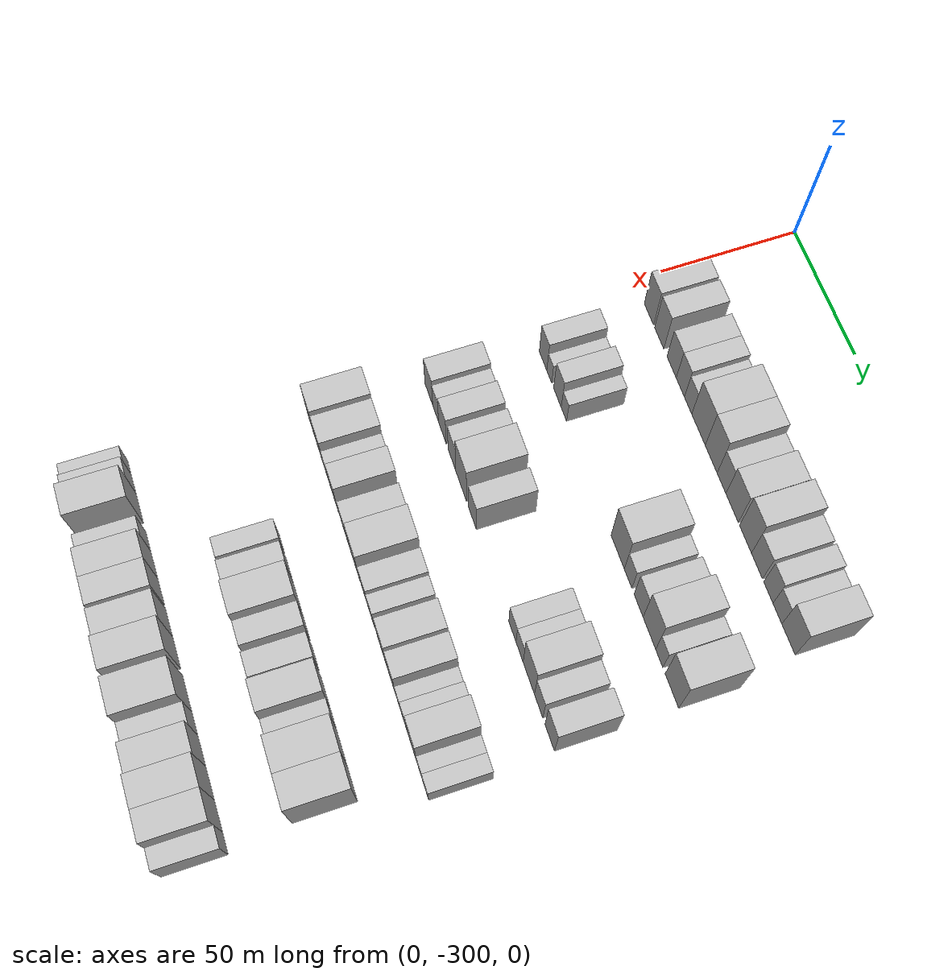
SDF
<sdf version="1.6">
 <world name="default">
  <model name="building_40">
   <static>1</static>
   <pose>50.0000 -285.7886 0 0.000000 0.000000 0.000000</pose>
   <link name="link">
    <pose>0 0 10.50 0 0 0</pose>
    <collision name="collision"><geometry><box><size>20.0000 8.7397 21.0000</size></box></geometry></collision>
    <visual name="visual">
     <cast_shadows>0</cast_shadows>
     <geometry><box><size>20.0000 8.7397 21.0000</size></box></geometry>
     <material>
      <script>
       <uri>model://HANNAS_wall/materials/scripts</uri>
       <uri>model://HANNAS_wall/materials/textures</uri>
       <name>vrc/HANNAS_wall</name>
      </script>
     </material>
    </visual>
   </link>
  </model>
  <model name="building_41">
   <static>1</static>
   <pose>50.0000 -276.1720 0 0.000000 0.000000 0.000000</pose>
   <link name="link">
    <pose>0 0 10.50 0 0 0</pose>
    <collision name="collision"><geometry><box><size>20.0000 8.4935 21.0000</size></box></geometry></collision>
    <visual name="visual">
     <cast_shadows>0</cast_shadows>
     <geometry><box><size>20.0000 8.4935 21.0000</size></box></geometry>
     <material>
      <script>
       <uri>model://HANNAS_wall/materials/scripts</uri>
       <uri>model://HANNAS_wall/materials/textures</uri>
       <name>vrc/HANNAS_wall</name>
      </script>
     </material>
    </visual>
   </link>
  </model>
  <model name="building_42">
   <static>1</static>
   <pose>50.0000 -264.7379 0 0.000000 0.000000 0.000000</pose>
   <link name="link">
    <pose>0 0 9.00 0 0 0</pose>
    <collision name="collision"><geometry><box><size>20.0000 8.3747 18.0000</size></box></geometry></collision>
    <visual name="visual">
     <cast_shadows>0</cast_shadows>
     <geometry><box><size>20.0000 8.3747 18.0000</size></box></geometry>
     <material>
      <script>
       <uri>model://HANNAS_wall/materials/scripts</uri>
       <uri>model://HANNAS_wall/materials/textures</uri>
       <name>vrc/HANNAS_wall</name>
      </script>
     </material>
    </visual>
   </link>
  </model>
  <model name="building_43">
   <static>1</static>
   <pose>50.0000 -256.8745 0 0.000000 0.000000 0.000000</pose>
   <link name="link">
    <pose>0 0 9.00 0 0 0</pose>
    <collision name="collision"><geometry><box><size>20.0000 7.3521 18.0000</size></box></geometry></collision>
    <visual name="visual">
     <cast_shadows>0</cast_shadows>
     <geometry><box><size>20.0000 7.3521 18.0000</size></box></geometry>
     <material>
      <script>
       <uri>model://HANNAS_wall/materials/scripts</uri>
       <uri>model://HANNAS_wall/materials/textures</uri>
       <name>vrc/HANNAS_wall</name>
      </script>
     </material>
    </visual>
   </link>
  </model>
  <model name="building_44">
   <static>1</static>
   <pose>50.0000 -249.8854 0 0.000000 0.000000 0.000000</pose>
   <link name="link">
    <pose>0 0 7.50 0 0 0</pose>
    <collision name="collision"><geometry><box><size>20.0000 6.6262 15.0000</size></box></geometry></collision>
    <visual name="visual">
     <cast_shadows>0</cast_shadows>
     <geometry><box><size>20.0000 6.6262 15.0000</size></box></geometry>
     <material>
      <script>
       <uri>model://HANNAS_wall/materials/scripts</uri>
       <uri>model://HANNAS_wall/materials/textures</uri>
       <name>vrc/HANNAS_wall</name>
      </script>
     </material>
    </visual>
   </link>
  </model>
  <model name="building_45">
   <static>1</static>
   <pose>50.0000 -240.6551 0 0.000000 0.000000 0.000000</pose>
   <link name="link">
    <pose>0 0 12.00 0 0 0</pose>
    <collision name="collision"><geometry><box><size>20.0000 11.8344 24.0000</size></box></geometry></collision>
    <visual name="visual">
     <cast_shadows>0</cast_shadows>
     <geometry><box><size>20.0000 11.8344 24.0000</size></box></geometry>
     <material>
      <script>
       <uri>model://HANNAS_wall/materials/scripts</uri>
       <uri>model://HANNAS_wall/materials/textures</uri>
       <name>vrc/HANNAS_wall</name>
      </script>
     </material>
    </visual>
   </link>
  </model>
  <model name="building_46">
   <static>1</static>
   <pose>50.0000 -229.5903 0 0.000000 0.000000 0.000000</pose>
   <link name="link">
    <pose>0 0 12.00 0 0 0</pose>
    <collision name="collision"><geometry><box><size>20.0000 10.2952 24.0000</size></box></geometry></collision>
    <visual name="visual">
     <cast_shadows>0</cast_shadows>
     <geometry><box><size>20.0000 10.2952 24.0000</size></box></geometry>
     <material>
      <script>
       <uri>model://HANNAS_wall/materials/scripts</uri>
       <uri>model://HANNAS_wall/materials/textures</uri>
       <name>vrc/HANNAS_wall</name>
      </script>
     </material>
    </visual>
   </link>
  </model>
  <model name="building_47">
   <static>1</static>
   <pose>50.0000 -220.6747 0 0.000000 0.000000 0.000000</pose>
   <link name="link">
    <pose>0 0 9.00 0 0 0</pose>
    <collision name="collision"><geometry><box><size>20.0000 7.5360 18.0000</size></box></geometry></collision>
    <visual name="visual">
     <cast_shadows>0</cast_shadows>
     <geometry><box><size>20.0000 7.5360 18.0000</size></box></geometry>
     <material>
      <script>
       <uri>model://HANNAS_wall/materials/scripts</uri>
       <uri>model://HANNAS_wall/materials/textures</uri>
       <name>vrc/HANNAS_wall</name>
      </script>
     </material>
    </visual>
   </link>
  </model>
  <model name="building_48">
   <static>1</static>
   <pose>50.0000 -211.6973 0 0.000000 0.000000 0.000000</pose>
   <link name="link">
    <pose>0 0 10.50 0 0 0</pose>
    <collision name="collision"><geometry><box><size>20.0000 10.4188 21.0000</size></box></geometry></collision>
    <visual name="visual">
     <cast_shadows>0</cast_shadows>
     <geometry><box><size>20.0000 10.4188 21.0000</size></box></geometry>
     <material>
      <script>
       <uri>model://HANNAS_wall/materials/scripts</uri>
       <uri>model://HANNAS_wall/materials/textures</uri>
       <name>vrc/HANNAS_wall</name>
      </script>
     </material>
    </visual>
   </link>
  </model>
  <model name="building_49">
   <static>1</static>
   <pose>50.0000 -200.5732 0 0.000000 0.000000 0.000000</pose>
   <link name="link">
    <pose>0 0 12.00 0 0 0</pose>
    <collision name="collision"><geometry><box><size>20.0000 9.8295 24.0000</size></box></geometry></collision>
    <visual name="visual">
     <cast_shadows>0</cast_shadows>
     <geometry><box><size>20.0000 9.8295 24.0000</size></box></geometry>
     <material>
      <script>
       <uri>model://HANNAS_wall/materials/scripts</uri>
       <uri>model://HANNAS_wall/materials/textures</uri>
       <name>vrc/HANNAS_wall</name>
      </script>
     </material>
    </visual>
   </link>
  </model>
  <model name="building_50">
   <static>1</static>
   <pose>50.0000 -191.1730 0 0.000000 0.000000 0.000000</pose>
   <link name="link">
    <pose>0 0 9.00 0 0 0</pose>
    <collision name="collision"><geometry><box><size>20.0000 8.9709 18.0000</size></box></geometry></collision>
    <visual name="visual">
     <cast_shadows>0</cast_shadows>
     <geometry><box><size>20.0000 8.9709 18.0000</size></box></geometry>
     <material>
      <script>
       <uri>model://HANNAS_wall/materials/scripts</uri>
       <uri>model://HANNAS_wall/materials/textures</uri>
       <name>vrc/HANNAS_wall</name>
      </script>
     </material>
    </visual>
   </link>
  </model>
  <model name="building_51">
   <static>1</static>
   <pose>50.0000 -181.9893 0 0.000000 0.000000 0.000000</pose>
   <link name="link">
    <pose>0 0 9.00 0 0 0</pose>
    <collision name="collision"><geometry><box><size>20.0000 7.3965 18.0000</size></box></geometry></collision>
    <visual name="visual">
     <cast_shadows>0</cast_shadows>
     <geometry><box><size>20.0000 7.3965 18.0000</size></box></geometry>
     <material>
      <script>
       <uri>model://HANNAS_wall/materials/scripts</uri>
       <uri>model://HANNAS_wall/materials/textures</uri>
       <name>vrc/HANNAS_wall</name>
      </script>
     </material>
    </visual>
   </link>
  </model>
  <model name="building_52">
   <static>1</static>
   <pose>50.0000 -174.7818 0 0.000000 0.000000 0.000000</pose>
   <link name="link">
    <pose>0 0 7.50 0 0 0</pose>
    <collision name="collision"><geometry><box><size>20.0000 7.0185 15.0000</size></box></geometry></collision>
    <visual name="visual">
     <cast_shadows>0</cast_shadows>
     <geometry><box><size>20.0000 7.0185 15.0000</size></box></geometry>
     <material>
      <script>
       <uri>model://HANNAS_wall/materials/scripts</uri>
       <uri>model://HANNAS_wall/materials/textures</uri>
       <name>vrc/HANNAS_wall</name>
      </script>
     </material>
    </visual>
   </link>
  </model>
  <model name="building_53">
   <static>1</static>
   <pose>50.0000 -166.0844 0 0.000000 0.000000 0.000000</pose>
   <link name="link">
    <pose>0 0 10.50 0 0 0</pose>
    <collision name="collision"><geometry><box><size>20.0000 10.3764 21.0000</size></box></geometry></collision>
    <visual name="visual">
     <cast_shadows>0</cast_shadows>
     <geometry><box><size>20.0000 10.3764 21.0000</size></box></geometry>
     <material>
      <script>
       <uri>model://HANNAS_wall/materials/scripts</uri>
       <uri>model://HANNAS_wall/materials/textures</uri>
       <name>vrc/HANNAS_wall</name>
      </script>
     </material>
    </visual>
   </link>
  </model>
  <model name="building_174">
   <static>1</static>
   <pose>90.0000 -280.3280 0 0.000000 0.000000 0.000000</pose>
   <link name="link">
    <pose>0 0 9.00 0 0 0</pose>
    <collision name="collision"><geometry><box><size>20.0000 7.4858 18.0000</size></box></geometry></collision>
    <visual name="visual">
     <cast_shadows>0</cast_shadows>
     <geometry><box><size>20.0000 7.4858 18.0000</size></box></geometry>
     <material>
      <script>
       <uri>model://HANNAS_wall/materials/scripts</uri>
       <uri>model://HANNAS_wall/materials/textures</uri>
       <name>vrc/HANNAS_wall</name>
      </script>
     </material>
    </visual>
   </link>
  </model>
  <model name="building_175">
   <static>1</static>
   <pose>90.0000 -274.1637 0 0.000000 0.000000 0.000000</pose>
   <link name="link">
    <pose>0 0 6.00 0 0 0</pose>
    <collision name="collision"><geometry><box><size>20.0000 4.8428 12.0000</size></box></geometry></collision>
    <visual name="visual">
     <cast_shadows>0</cast_shadows>
     <geometry><box><size>20.0000 4.8428 12.0000</size></box></geometry>
     <material>
      <script>
       <uri>model://HANNAS_wall/materials/scripts</uri>
       <uri>model://HANNAS_wall/materials/textures</uri>
       <name>vrc/HANNAS_wall</name>
      </script>
     </material>
    </visual>
   </link>
  </model>
  <model name="building_176">
   <static>1</static>
   <pose>90.0000 -266.0257 0 0.000000 0.000000 0.000000</pose>
   <link name="link">
    <pose>0 0 9.00 0 0 0</pose>
    <collision name="collision"><geometry><box><size>20.0000 7.4333 18.0000</size></box></geometry></collision>
    <visual name="visual">
     <cast_shadows>0</cast_shadows>
     <geometry><box><size>20.0000 7.4333 18.0000</size></box></geometry>
     <material>
      <script>
       <uri>model://HANNAS_wall/materials/scripts</uri>
       <uri>model://HANNAS_wall/materials/textures</uri>
       <name>vrc/HANNAS_wall</name>
      </script>
     </material>
    </visual>
   </link>
  </model>
  <model name="building_177">
   <static>1</static>
   <pose>90.0000 -259.6728 0 0.000000 0.000000 0.000000</pose>
   <link name="link">
    <pose>0 0 6.00 0 0 0</pose>
    <collision name="collision"><geometry><box><size>20.0000 5.2724 12.0000</size></box></geometry></collision>
    <visual name="visual">
     <cast_shadows>0</cast_shadows>
     <geometry><box><size>20.0000 5.2724 12.0000</size></box></geometry>
     <material>
      <script>
       <uri>model://HANNAS_wall/materials/scripts</uri>
       <uri>model://HANNAS_wall/materials/textures</uri>
       <name>vrc/HANNAS_wall</name>
      </script>
     </material>
    </visual>
   </link>
  </model>
  <model name="building_178">
   <static>1</static>
   <pose>90.0000 -209.2041 0 0.000000 0.000000 0.000000</pose>
   <link name="link">
    <pose>0 0 12.00 0 0 0</pose>
    <collision name="collision"><geometry><box><size>20.0000 11.8884 24.0000</size></box></geometry></collision>
    <visual name="visual">
     <cast_shadows>0</cast_shadows>
     <geometry><box><size>20.0000 11.8884 24.0000</size></box></geometry>
     <material>
      <script>
       <uri>model://HANNAS_wall/materials/scripts</uri>
       <uri>model://HANNAS_wall/materials/textures</uri>
       <name>vrc/HANNAS_wall</name>
      </script>
     </material>
    </visual>
   </link>
  </model>
  <model name="building_179">
   <static>1</static>
   <pose>90.0000 -199.9411 0 0.000000 0.000000 0.000000</pose>
   <link name="link">
    <pose>0 0 7.50 0 0 0</pose>
    <collision name="collision"><geometry><box><size>20.0000 6.6376 15.0000</size></box></geometry></collision>
    <visual name="visual">
     <cast_shadows>0</cast_shadows>
     <geometry><box><size>20.0000 6.6376 15.0000</size></box></geometry>
     <material>
      <script>
       <uri>model://HANNAS_wall/materials/scripts</uri>
       <uri>model://HANNAS_wall/materials/textures</uri>
       <name>vrc/HANNAS_wall</name>
      </script>
     </material>
    </visual>
   </link>
  </model>
  <model name="building_180">
   <static>1</static>
   <pose>90.0000 -190.6815 0 0.000000 0.000000 0.000000</pose>
   <link name="link">
    <pose>0 0 9.00 0 0 0</pose>
    <collision name="collision"><geometry><box><size>20.0000 7.8816 18.0000</size></box></geometry></collision>
    <visual name="visual">
     <cast_shadows>0</cast_shadows>
     <geometry><box><size>20.0000 7.8816 18.0000</size></box></geometry>
     <material>
      <script>
       <uri>model://HANNAS_wall/materials/scripts</uri>
       <uri>model://HANNAS_wall/materials/textures</uri>
       <name>vrc/HANNAS_wall</name>
      </script>
     </material>
    </visual>
   </link>
  </model>
  <model name="building_181">
   <static>1</static>
   <pose>90.0000 -181.3349 0 0.000000 0.000000 0.000000</pose>
   <link name="link">
    <pose>0 0 12.00 0 0 0</pose>
    <collision name="collision"><geometry><box><size>20.0000 10.8117 24.0000</size></box></geometry></collision>
    <visual name="visual">
     <cast_shadows>0</cast_shadows>
     <geometry><box><size>20.0000 10.8117 24.0000</size></box></geometry>
     <material>
      <script>
       <uri>model://HANNAS_wall/materials/scripts</uri>
       <uri>model://HANNAS_wall/materials/textures</uri>
       <name>vrc/HANNAS_wall</name>
      </script>
     </material>
    </visual>
   </link>
  </model>
  <model name="building_182">
   <static>1</static>
   <pose>90.0000 -172.9248 0 0.000000 0.000000 0.000000</pose>
   <link name="link">
    <pose>0 0 7.50 0 0 0</pose>
    <collision name="collision"><geometry><box><size>20.0000 6.0084 15.0000</size></box></geometry></collision>
    <visual name="visual">
     <cast_shadows>0</cast_shadows>
     <geometry><box><size>20.0000 6.0084 15.0000</size></box></geometry>
     <material>
      <script>
       <uri>model://HANNAS_wall/materials/scripts</uri>
       <uri>model://HANNAS_wall/materials/textures</uri>
       <name>vrc/HANNAS_wall</name>
      </script>
     </material>
    </visual>
   </link>
  </model>
  <model name="building_183">
   <static>1</static>
   <pose>90.0000 -162.3015 0 0.000000 0.000000 0.000000</pose>
   <link name="link">
    <pose>0 0 12.00 0 0 0</pose>
    <collision name="collision"><geometry><box><size>20.0000 11.2383 24.0000</size></box></geometry></collision>
    <visual name="visual">
     <cast_shadows>0</cast_shadows>
     <geometry><box><size>20.0000 11.2383 24.0000</size></box></geometry>
     <material>
      <script>
       <uri>model://HANNAS_wall/materials/scripts</uri>
       <uri>model://HANNAS_wall/materials/textures</uri>
       <name>vrc/HANNAS_wall</name>
      </script>
     </material>
    </visual>
   </link>
  </model>
  <model name="building_316">
   <static>1</static>
   <pose>130.0000 -280.4497 0 0.000000 0.000000 0.000000</pose>
   <link name="link">
    <pose>0 0 9.00 0 0 0</pose>
    <collision name="collision"><geometry><box><size>20.0000 8.4128 18.0000</size></box></geometry></collision>
    <visual name="visual">
     <cast_shadows>0</cast_shadows>
     <geometry><box><size>20.0000 8.4128 18.0000</size></box></geometry>
     <material>
      <script>
       <uri>model://HANNAS_wall/materials/scripts</uri>
       <uri>model://HANNAS_wall/materials/textures</uri>
       <name>vrc/HANNAS_wall</name>
      </script>
     </material>
    </visual>
   </link>
  </model>
  <model name="building_317">
   <static>1</static>
   <pose>130.0000 -273.0772 0 0.000000 0.000000 0.000000</pose>
   <link name="link">
    <pose>0 0 7.50 0 0 0</pose>
    <collision name="collision"><geometry><box><size>20.0000 6.3323 15.0000</size></box></geometry></collision>
    <visual name="visual">
     <cast_shadows>0</cast_shadows>
     <geometry><box><size>20.0000 6.3323 15.0000</size></box></geometry>
     <material>
      <script>
       <uri>model://HANNAS_wall/materials/scripts</uri>
       <uri>model://HANNAS_wall/materials/textures</uri>
       <name>vrc/HANNAS_wall</name>
      </script>
     </material>
    </visual>
   </link>
  </model>
  <model name="building_318">
   <static>1</static>
   <pose>130.0000 -265.8118 0 0.000000 0.000000 0.000000</pose>
   <link name="link">
    <pose>0 0 9.00 0 0 0</pose>
    <collision name="collision"><geometry><box><size>20.0000 8.1985 18.0000</size></box></geometry></collision>
    <visual name="visual">
     <cast_shadows>0</cast_shadows>
     <geometry><box><size>20.0000 8.1985 18.0000</size></box></geometry>
     <material>
      <script>
       <uri>model://HANNAS_wall/materials/scripts</uri>
       <uri>model://HANNAS_wall/materials/textures</uri>
       <name>vrc/HANNAS_wall</name>
      </script>
     </material>
    </visual>
   </link>
  </model>
  <model name="building_319">
   <static>1</static>
   <pose>130.0000 -255.6829 0 0.000000 0.000000 0.000000</pose>
   <link name="link">
    <pose>0 0 9.00 0 0 0</pose>
    <collision name="collision"><geometry><box><size>20.0000 8.0593 18.0000</size></box></geometry></collision>
    <visual name="visual">
     <cast_shadows>0</cast_shadows>
     <geometry><box><size>20.0000 8.0593 18.0000</size></box></geometry>
     <material>
      <script>
       <uri>model://HANNAS_wall/materials/scripts</uri>
       <uri>model://HANNAS_wall/materials/textures</uri>
       <name>vrc/HANNAS_wall</name>
      </script>
     </material>
    </visual>
   </link>
  </model>
  <model name="building_320">
   <static>1</static>
   <pose>130.0000 -246.0535 0 0.000000 0.000000 0.000000</pose>
   <link name="link">
    <pose>0 0 12.00 0 0 0</pose>
    <collision name="collision"><geometry><box><size>20.0000 11.1996 24.0000</size></box></geometry></collision>
    <visual name="visual">
     <cast_shadows>0</cast_shadows>
     <geometry><box><size>20.0000 11.1996 24.0000</size></box></geometry>
     <material>
      <script>
       <uri>model://HANNAS_wall/materials/scripts</uri>
       <uri>model://HANNAS_wall/materials/textures</uri>
       <name>vrc/HANNAS_wall</name>
      </script>
     </material>
    </visual>
   </link>
  </model>
  <model name="building_321">
   <static>1</static>
   <pose>130.0000 -234.4332 0 0.000000 0.000000 0.000000</pose>
   <link name="link">
    <pose>0 0 9.00 0 0 0</pose>
    <collision name="collision"><geometry><box><size>20.0000 8.0409 18.0000</size></box></geometry></collision>
    <visual name="visual">
     <cast_shadows>0</cast_shadows>
     <geometry><box><size>20.0000 8.0409 18.0000</size></box></geometry>
     <material>
      <script>
       <uri>model://HANNAS_wall/materials/scripts</uri>
       <uri>model://HANNAS_wall/materials/textures</uri>
       <name>vrc/HANNAS_wall</name>
      </script>
     </material>
    </visual>
   </link>
  </model>
  <model name="building_322">
   <static>1</static>
   <pose>130.0000 -195.0564 0 0.000000 0.000000 0.000000</pose>
   <link name="link">
    <pose>0 0 7.50 0 0 0</pose>
    <collision name="collision"><geometry><box><size>20.0000 6.9043 15.0000</size></box></geometry></collision>
    <visual name="visual">
     <cast_shadows>0</cast_shadows>
     <geometry><box><size>20.0000 6.9043 15.0000</size></box></geometry>
     <material>
      <script>
       <uri>model://HANNAS_wall/materials/scripts</uri>
       <uri>model://HANNAS_wall/materials/textures</uri>
       <name>vrc/HANNAS_wall</name>
      </script>
     </material>
    </visual>
   </link>
  </model>
  <model name="building_323">
   <static>1</static>
   <pose>130.0000 -188.2530 0 0.000000 0.000000 0.000000</pose>
   <link name="link">
    <pose>0 0 7.50 0 0 0</pose>
    <collision name="collision"><geometry><box><size>20.0000 6.7026 15.0000</size></box></geometry></collision>
    <visual name="visual">
     <cast_shadows>0</cast_shadows>
     <geometry><box><size>20.0000 6.7026 15.0000</size></box></geometry>
     <material>
      <script>
       <uri>model://HANNAS_wall/materials/scripts</uri>
       <uri>model://HANNAS_wall/materials/textures</uri>
       <name>vrc/HANNAS_wall</name>
      </script>
     </material>
    </visual>
   </link>
  </model>
  <model name="building_324">
   <static>1</static>
   <pose>130.0000 -179.6223 0 0.000000 0.000000 0.000000</pose>
   <link name="link">
    <pose>0 0 12.00 0 0 0</pose>
    <collision name="collision"><geometry><box><size>20.0000 10.5587 24.0000</size></box></geometry></collision>
    <visual name="visual">
     <cast_shadows>0</cast_shadows>
     <geometry><box><size>20.0000 10.5587 24.0000</size></box></geometry>
     <material>
      <script>
       <uri>model://HANNAS_wall/materials/scripts</uri>
       <uri>model://HANNAS_wall/materials/textures</uri>
       <name>vrc/HANNAS_wall</name>
      </script>
     </material>
    </visual>
   </link>
  </model>
  <model name="building_325">
   <static>1</static>
   <pose>130.0000 -170.5577 0 0.000000 0.000000 0.000000</pose>
   <link name="link">
    <pose>0 0 9.00 0 0 0</pose>
    <collision name="collision"><geometry><box><size>20.0000 7.5705 18.0000</size></box></geometry></collision>
    <visual name="visual">
     <cast_shadows>0</cast_shadows>
     <geometry><box><size>20.0000 7.5705 18.0000</size></box></geometry>
     <material>
      <script>
       <uri>model://HANNAS_wall/materials/scripts</uri>
       <uri>model://HANNAS_wall/materials/textures</uri>
       <name>vrc/HANNAS_wall</name>
      </script>
     </material>
    </visual>
   </link>
  </model>
  <model name="building_326">
   <static>1</static>
   <pose>130.0000 -160.5108 0 0.000000 0.000000 0.000000</pose>
   <link name="link">
    <pose>0 0 10.50 0 0 0</pose>
    <collision name="collision"><geometry><box><size>20.0000 8.5234 21.0000</size></box></geometry></collision>
    <visual name="visual">
     <cast_shadows>0</cast_shadows>
     <geometry><box><size>20.0000 8.5234 21.0000</size></box></geometry>
     <material>
      <script>
       <uri>model://HANNAS_wall/materials/scripts</uri>
       <uri>model://HANNAS_wall/materials/textures</uri>
       <name>vrc/HANNAS_wall</name>
      </script>
     </material>
    </visual>
   </link>
  </model>
  <model name="building_455">
   <static>1</static>
   <pose>170.0000 -280.2117 0 0.000000 0.000000 0.000000</pose>
   <link name="link">
    <pose>0 0 12.00 0 0 0</pose>
    <collision name="collision"><geometry><box><size>20.0000 10.0512 24.0000</size></box></geometry></collision>
    <visual name="visual">
     <cast_shadows>0</cast_shadows>
     <geometry><box><size>20.0000 10.0512 24.0000</size></box></geometry>
     <material>
      <script>
       <uri>model://HANNAS_wall/materials/scripts</uri>
       <uri>model://HANNAS_wall/materials/textures</uri>
       <name>vrc/HANNAS_wall</name>
      </script>
     </material>
    </visual>
   </link>
  </model>
  <model name="building_456">
   <static>1</static>
   <pose>170.0000 -270.2734 0 0.000000 0.000000 0.000000</pose>
   <link name="link">
    <pose>0 0 10.50 0 0 0</pose>
    <collision name="collision"><geometry><box><size>20.0000 9.8253 21.0000</size></box></geometry></collision>
    <visual name="visual">
     <cast_shadows>0</cast_shadows>
     <geometry><box><size>20.0000 9.8253 21.0000</size></box></geometry>
     <material>
      <script>
       <uri>model://HANNAS_wall/materials/scripts</uri>
       <uri>model://HANNAS_wall/materials/textures</uri>
       <name>vrc/HANNAS_wall</name>
      </script>
     </material>
    </visual>
   </link>
  </model>
  <model name="building_457">
   <static>1</static>
   <pose>170.0000 -261.7648 0 0.000000 0.000000 0.000000</pose>
   <link name="link">
    <pose>0 0 7.50 0 0 0</pose>
    <collision name="collision"><geometry><box><size>20.0000 7.1920 15.0000</size></box></geometry></collision>
    <visual name="visual">
     <cast_shadows>0</cast_shadows>
     <geometry><box><size>20.0000 7.1920 15.0000</size></box></geometry>
     <material>
      <script>
       <uri>model://HANNAS_wall/materials/scripts</uri>
       <uri>model://HANNAS_wall/materials/textures</uri>
       <name>vrc/HANNAS_wall</name>
      </script>
     </material>
    </visual>
   </link>
  </model>
  <model name="building_458">
   <static>1</static>
   <pose>170.0000 -253.7458 0 0.000000 0.000000 0.000000</pose>
   <link name="link">
    <pose>0 0 10.50 0 0 0</pose>
    <collision name="collision"><geometry><box><size>20.0000 8.8459 21.0000</size></box></geometry></collision>
    <visual name="visual">
     <cast_shadows>0</cast_shadows>
     <geometry><box><size>20.0000 8.8459 21.0000</size></box></geometry>
     <material>
      <script>
       <uri>model://HANNAS_wall/materials/scripts</uri>
       <uri>model://HANNAS_wall/materials/textures</uri>
       <name>vrc/HANNAS_wall</name>
      </script>
     </material>
    </visual>
   </link>
  </model>
  <model name="building_459">
   <static>1</static>
   <pose>170.0000 -241.9417 0 0.000000 0.000000 0.000000</pose>
   <link name="link">
    <pose>0 0 9.00 0 0 0</pose>
    <collision name="collision"><geometry><box><size>20.0000 8.7622 18.0000</size></box></geometry></collision>
    <visual name="visual">
     <cast_shadows>0</cast_shadows>
     <geometry><box><size>20.0000 8.7622 18.0000</size></box></geometry>
     <material>
      <script>
       <uri>model://HANNAS_wall/materials/scripts</uri>
       <uri>model://HANNAS_wall/materials/textures</uri>
       <name>vrc/HANNAS_wall</name>
      </script>
     </material>
    </visual>
   </link>
  </model>
  <model name="building_460">
   <static>1</static>
   <pose>170.0000 -230.8721 0 0.000000 0.000000 0.000000</pose>
   <link name="link">
    <pose>0 0 12.00 0 0 0</pose>
    <collision name="collision"><geometry><box><size>20.0000 11.3772 24.0000</size></box></geometry></collision>
    <visual name="visual">
     <cast_shadows>0</cast_shadows>
     <geometry><box><size>20.0000 11.3772 24.0000</size></box></geometry>
     <material>
      <script>
       <uri>model://HANNAS_wall/materials/scripts</uri>
       <uri>model://HANNAS_wall/materials/textures</uri>
       <name>vrc/HANNAS_wall</name>
      </script>
     </material>
    </visual>
   </link>
  </model>
  <model name="building_461">
   <static>1</static>
   <pose>170.0000 -220.0745 0 0.000000 0.000000 0.000000</pose>
   <link name="link">
    <pose>0 0 9.00 0 0 0</pose>
    <collision name="collision"><geometry><box><size>20.0000 8.2180 18.0000</size></box></geometry></collision>
    <visual name="visual">
     <cast_shadows>0</cast_shadows>
     <geometry><box><size>20.0000 8.2180 18.0000</size></box></geometry>
     <material>
      <script>
       <uri>model://HANNAS_wall/materials/scripts</uri>
       <uri>model://HANNAS_wall/materials/textures</uri>
       <name>vrc/HANNAS_wall</name>
      </script>
     </material>
    </visual>
   </link>
  </model>
  <model name="building_462">
   <static>1</static>
   <pose>170.0000 -212.7115 0 0.000000 0.000000 0.000000</pose>
   <link name="link">
    <pose>0 0 7.50 0 0 0</pose>
    <collision name="collision"><geometry><box><size>20.0000 6.5081 15.0000</size></box></geometry></collision>
    <visual name="visual">
     <cast_shadows>0</cast_shadows>
     <geometry><box><size>20.0000 6.5081 15.0000</size></box></geometry>
     <material>
      <script>
       <uri>model://HANNAS_wall/materials/scripts</uri>
       <uri>model://HANNAS_wall/materials/textures</uri>
       <name>vrc/HANNAS_wall</name>
      </script>
     </material>
    </visual>
   </link>
  </model>
  <model name="building_463">
   <static>1</static>
   <pose>170.0000 -201.6262 0 0.000000 0.000000 0.000000</pose>
   <link name="link">
    <pose>0 0 10.50 0 0 0</pose>
    <collision name="collision"><geometry><box><size>20.0000 9.6624 21.0000</size></box></geometry></collision>
    <visual name="visual">
     <cast_shadows>0</cast_shadows>
     <geometry><box><size>20.0000 9.6624 21.0000</size></box></geometry>
     <material>
      <script>
       <uri>model://HANNAS_wall/materials/scripts</uri>
       <uri>model://HANNAS_wall/materials/textures</uri>
       <name>vrc/HANNAS_wall</name>
      </script>
     </material>
    </visual>
   </link>
  </model>
  <model name="building_464">
   <static>1</static>
   <pose>170.0000 -191.4637 0 0.000000 0.000000 0.000000</pose>
   <link name="link">
    <pose>0 0 10.50 0 0 0</pose>
    <collision name="collision"><geometry><box><size>20.0000 8.6627 21.0000</size></box></geometry></collision>
    <visual name="visual">
     <cast_shadows>0</cast_shadows>
     <geometry><box><size>20.0000 8.6627 21.0000</size></box></geometry>
     <material>
      <script>
       <uri>model://HANNAS_wall/materials/scripts</uri>
       <uri>model://HANNAS_wall/materials/textures</uri>
       <name>vrc/HANNAS_wall</name>
      </script>
     </material>
    </visual>
   </link>
  </model>
  <model name="building_465">
   <static>1</static>
   <pose>170.0000 -184.3292 0 0.000000 0.000000 0.000000</pose>
   <link name="link">
    <pose>0 0 6.00 0 0 0</pose>
    <collision name="collision"><geometry><box><size>20.0000 5.6063 12.0000</size></box></geometry></collision>
    <visual name="visual">
     <cast_shadows>0</cast_shadows>
     <geometry><box><size>20.0000 5.6063 12.0000</size></box></geometry>
     <material>
      <script>
       <uri>model://HANNAS_wall/materials/scripts</uri>
       <uri>model://HANNAS_wall/materials/textures</uri>
       <name>vrc/HANNAS_wall</name>
      </script>
     </material>
    </visual>
   </link>
  </model>
  <model name="building_466">
   <static>1</static>
   <pose>170.0000 -178.3943 0 0.000000 0.000000 0.000000</pose>
   <link name="link">
    <pose>0 0 7.50 0 0 0</pose>
    <collision name="collision"><geometry><box><size>20.0000 6.2635 15.0000</size></box></geometry></collision>
    <visual name="visual">
     <cast_shadows>0</cast_shadows>
     <geometry><box><size>20.0000 6.2635 15.0000</size></box></geometry>
     <material>
      <script>
       <uri>model://HANNAS_wall/materials/scripts</uri>
       <uri>model://HANNAS_wall/materials/textures</uri>
       <name>vrc/HANNAS_wall</name>
      </script>
     </material>
    </visual>
   </link>
  </model>
  <model name="building_467">
   <static>1</static>
   <pose>170.0000 -170.3939 0 0.000000 0.000000 0.000000</pose>
   <link name="link">
    <pose>0 0 12.00 0 0 0</pose>
    <collision name="collision"><geometry><box><size>20.0000 9.7371 24.0000</size></box></geometry></collision>
    <visual name="visual">
     <cast_shadows>0</cast_shadows>
     <geometry><box><size>20.0000 9.7371 24.0000</size></box></geometry>
     <material>
      <script>
       <uri>model://HANNAS_wall/materials/scripts</uri>
       <uri>model://HANNAS_wall/materials/textures</uri>
       <name>vrc/HANNAS_wall</name>
      </script>
     </material>
    </visual>
   </link>
  </model>
  <model name="building_468">
   <static>1</static>
   <pose>170.0000 -162.8399 0 0.000000 0.000000 0.000000</pose>
   <link name="link">
    <pose>0 0 6.00 0 0 0</pose>
    <collision name="collision"><geometry><box><size>20.0000 5.3709 12.0000</size></box></geometry></collision>
    <visual name="visual">
     <cast_shadows>0</cast_shadows>
     <geometry><box><size>20.0000 5.3709 12.0000</size></box></geometry>
     <material>
      <script>
       <uri>model://HANNAS_wall/materials/scripts</uri>
       <uri>model://HANNAS_wall/materials/textures</uri>
       <name>vrc/HANNAS_wall</name>
      </script>
     </material>
    </visual>
   </link>
  </model>
  <model name="building_469">
   <static>1</static>
   <pose>170.0000 -157.1790 0 0.000000 0.000000 0.000000</pose>
   <link name="link">
    <pose>0 0 6.00 0 0 0</pose>
    <collision name="collision"><geometry><box><size>20.0000 5.9509 12.0000</size></box></geometry></collision>
    <visual name="visual">
     <cast_shadows>0</cast_shadows>
     <geometry><box><size>20.0000 5.9509 12.0000</size></box></geometry>
     <material>
      <script>
       <uri>model://HANNAS_wall/materials/scripts</uri>
       <uri>model://HANNAS_wall/materials/textures</uri>
       <name>vrc/HANNAS_wall</name>
      </script>
     </material>
    </visual>
   </link>
  </model>
  <model name="building_582">
   <static>1</static>
   <pose>210.0000 -245.0108 0 0.000000 0.000000 0.000000</pose>
   <link name="link">
    <pose>0 0 7.50 0 0 0</pose>
    <collision name="collision"><geometry><box><size>20.0000 6.7053 15.0000</size></box></geometry></collision>
    <visual name="visual">
     <cast_shadows>0</cast_shadows>
     <geometry><box><size>20.0000 6.7053 15.0000</size></box></geometry>
     <material>
      <script>
       <uri>model://HANNAS_wall/materials/scripts</uri>
       <uri>model://HANNAS_wall/materials/textures</uri>
       <name>vrc/HANNAS_wall</name>
      </script>
     </material>
    </visual>
   </link>
  </model>
  <model name="building_583">
   <static>1</static>
   <pose>210.0000 -235.3340 0 0.000000 0.000000 0.000000</pose>
   <link name="link">
    <pose>0 0 9.00 0 0 0</pose>
    <collision name="collision"><geometry><box><size>20.0000 8.6484 18.0000</size></box></geometry></collision>
    <visual name="visual">
     <cast_shadows>0</cast_shadows>
     <geometry><box><size>20.0000 8.6484 18.0000</size></box></geometry>
     <material>
      <script>
       <uri>model://HANNAS_wall/materials/scripts</uri>
       <uri>model://HANNAS_wall/materials/textures</uri>
       <name>vrc/HANNAS_wall</name>
      </script>
     </material>
    </visual>
   </link>
  </model>
  <model name="building_584">
   <static>1</static>
   <pose>210.0000 -225.3872 0 0.000000 0.000000 0.000000</pose>
   <link name="link">
    <pose>0 0 12.00 0 0 0</pose>
    <collision name="collision"><geometry><box><size>20.0000 11.2452 24.0000</size></box></geometry></collision>
    <visual name="visual">
     <cast_shadows>0</cast_shadows>
     <geometry><box><size>20.0000 11.2452 24.0000</size></box></geometry>
     <material>
      <script>
       <uri>model://HANNAS_wall/materials/scripts</uri>
       <uri>model://HANNAS_wall/materials/textures</uri>
       <name>vrc/HANNAS_wall</name>
      </script>
     </material>
    </visual>
   </link>
  </model>
  <model name="building_585">
   <static>1</static>
   <pose>210.0000 -215.7612 0 0.000000 0.000000 0.000000</pose>
   <link name="link">
    <pose>0 0 9.00 0 0 0</pose>
    <collision name="collision"><geometry><box><size>20.0000 8.0067 18.0000</size></box></geometry></collision>
    <visual name="visual">
     <cast_shadows>0</cast_shadows>
     <geometry><box><size>20.0000 8.0067 18.0000</size></box></geometry>
     <material>
      <script>
       <uri>model://HANNAS_wall/materials/scripts</uri>
       <uri>model://HANNAS_wall/materials/textures</uri>
       <name>vrc/HANNAS_wall</name>
      </script>
     </material>
    </visual>
   </link>
  </model>
  <model name="building_586">
   <static>1</static>
   <pose>210.0000 -205.7527 0 0.000000 0.000000 0.000000</pose>
   <link name="link">
    <pose>0 0 9.00 0 0 0</pose>
    <collision name="collision"><geometry><box><size>20.0000 8.0103 18.0000</size></box></geometry></collision>
    <visual name="visual">
     <cast_shadows>0</cast_shadows>
     <geometry><box><size>20.0000 8.0103 18.0000</size></box></geometry>
     <material>
      <script>
       <uri>model://HANNAS_wall/materials/scripts</uri>
       <uri>model://HANNAS_wall/materials/textures</uri>
       <name>vrc/HANNAS_wall</name>
      </script>
     </material>
    </visual>
   </link>
  </model>
  <model name="building_587">
   <static>1</static>
   <pose>210.0000 -194.6323 0 0.000000 0.000000 0.000000</pose>
   <link name="link">
    <pose>0 0 12.00 0 0 0</pose>
    <collision name="collision"><geometry><box><size>20.0000 10.2304 24.0000</size></box></geometry></collision>
    <visual name="visual">
     <cast_shadows>0</cast_shadows>
     <geometry><box><size>20.0000 10.2304 24.0000</size></box></geometry>
     <material>
      <script>
       <uri>model://HANNAS_wall/materials/scripts</uri>
       <uri>model://HANNAS_wall/materials/textures</uri>
       <name>vrc/HANNAS_wall</name>
      </script>
     </material>
    </visual>
   </link>
  </model>
  <model name="building_588">
   <static>1</static>
   <pose>210.0000 -186.1189 0 0.000000 0.000000 0.000000</pose>
   <link name="link">
    <pose>0 0 7.50 0 0 0</pose>
    <collision name="collision"><geometry><box><size>20.0000 6.7963 15.0000</size></box></geometry></collision>
    <visual name="visual">
     <cast_shadows>0</cast_shadows>
     <geometry><box><size>20.0000 6.7963 15.0000</size></box></geometry>
     <material>
      <script>
       <uri>model://HANNAS_wall/materials/scripts</uri>
       <uri>model://HANNAS_wall/materials/textures</uri>
       <name>vrc/HANNAS_wall</name>
      </script>
     </material>
    </visual>
   </link>
  </model>
  <model name="building_589">
   <static>1</static>
   <pose>210.0000 -177.0100 0 0.000000 0.000000 0.000000</pose>
   <link name="link">
    <pose>0 0 12.00 0 0 0</pose>
    <collision name="collision"><geometry><box><size>20.0000 11.4217 24.0000</size></box></geometry></collision>
    <visual name="visual">
     <cast_shadows>0</cast_shadows>
     <geometry><box><size>20.0000 11.4217 24.0000</size></box></geometry>
     <material>
      <script>
       <uri>model://HANNAS_wall/materials/scripts</uri>
       <uri>model://HANNAS_wall/materials/textures</uri>
       <name>vrc/HANNAS_wall</name>
      </script>
     </material>
    </visual>
   </link>
  </model>
  <model name="building_590">
   <static>1</static>
   <pose>210.0000 -165.8409 0 0.000000 0.000000 0.000000</pose>
   <link name="link">
    <pose>0 0 12.00 0 0 0</pose>
    <collision name="collision"><geometry><box><size>20.0000 10.9166 24.0000</size></box></geometry></collision>
    <visual name="visual">
     <cast_shadows>0</cast_shadows>
     <geometry><box><size>20.0000 10.9166 24.0000</size></box></geometry>
     <material>
      <script>
       <uri>model://HANNAS_wall/materials/scripts</uri>
       <uri>model://HANNAS_wall/materials/textures</uri>
       <name>vrc/HANNAS_wall</name>
      </script>
     </material>
    </visual>
   </link>
  </model>
  <model name="building_711">
   <static>1</static>
   <pose>250.0000 -285.9028 0 0.000000 0.000000 0.000000</pose>
   <link name="link">
    <pose>0 0 6.00 0 0 0</pose>
    <collision name="collision"><geometry><box><size>20.0000 5.1824 12.0000</size></box></geometry></collision>
    <visual name="visual">
     <cast_shadows>0</cast_shadows>
     <geometry><box><size>20.0000 5.1824 12.0000</size></box></geometry>
     <material>
      <script>
       <uri>model://HANNAS_wall/materials/scripts</uri>
       <uri>model://HANNAS_wall/materials/textures</uri>
       <name>vrc/HANNAS_wall</name>
      </script>
     </material>
    </visual>
   </link>
  </model>
  <model name="building_712">
   <static>1</static>
   <pose>250.0000 -279.8245 0 0.000000 0.000000 0.000000</pose>
   <link name="link">
    <pose>0 0 7.50 0 0 0</pose>
    <collision name="collision"><geometry><box><size>20.0000 6.9742 15.0000</size></box></geometry></collision>
    <visual name="visual">
     <cast_shadows>0</cast_shadows>
     <geometry><box><size>20.0000 6.9742 15.0000</size></box></geometry>
     <material>
      <script>
       <uri>model://HANNAS_wall/materials/scripts</uri>
       <uri>model://HANNAS_wall/materials/textures</uri>
       <name>vrc/HANNAS_wall</name>
      </script>
     </material>
    </visual>
   </link>
  </model>
  <model name="building_713">
   <static>1</static>
   <pose>250.0000 -270.9713 0 0.000000 0.000000 0.000000</pose>
   <link name="link">
    <pose>0 0 12.00 0 0 0</pose>
    <collision name="collision"><geometry><box><size>20.0000 10.7322 24.0000</size></box></geometry></collision>
    <visual name="visual">
     <cast_shadows>0</cast_shadows>
     <geometry><box><size>20.0000 10.7322 24.0000</size></box></geometry>
     <material>
      <script>
       <uri>model://HANNAS_wall/materials/scripts</uri>
       <uri>model://HANNAS_wall/materials/textures</uri>
       <name>vrc/HANNAS_wall</name>
      </script>
     </material>
    </visual>
   </link>
  </model>
  <model name="building_714">
   <static>1</static>
   <pose>250.0000 -259.2104 0 0.000000 0.000000 0.000000</pose>
   <link name="link">
    <pose>0 0 7.50 0 0 0</pose>
    <collision name="collision"><geometry><box><size>20.0000 6.7897 15.0000</size></box></geometry></collision>
    <visual name="visual">
     <cast_shadows>0</cast_shadows>
     <geometry><box><size>20.0000 6.7897 15.0000</size></box></geometry>
     <material>
      <script>
       <uri>model://HANNAS_wall/materials/scripts</uri>
       <uri>model://HANNAS_wall/materials/textures</uri>
       <name>vrc/HANNAS_wall</name>
      </script>
     </material>
    </visual>
   </link>
  </model>
  <model name="building_715">
   <static>1</static>
   <pose>250.0000 -251.0454 0 0.000000 0.000000 0.000000</pose>
   <link name="link">
    <pose>0 0 10.50 0 0 0</pose>
    <collision name="collision"><geometry><box><size>20.0000 9.5403 21.0000</size></box></geometry></collision>
    <visual name="visual">
     <cast_shadows>0</cast_shadows>
     <geometry><box><size>20.0000 9.5403 21.0000</size></box></geometry>
     <material>
      <script>
       <uri>model://HANNAS_wall/materials/scripts</uri>
       <uri>model://HANNAS_wall/materials/textures</uri>
       <name>vrc/HANNAS_wall</name>
      </script>
     </material>
    </visual>
   </link>
  </model>
  <model name="building_716">
   <static>1</static>
   <pose>250.0000 -241.6319 0 0.000000 0.000000 0.000000</pose>
   <link name="link">
    <pose>0 0 10.50 0 0 0</pose>
    <collision name="collision"><geometry><box><size>20.0000 9.2866 21.0000</size></box></geometry></collision>
    <visual name="visual">
     <cast_shadows>0</cast_shadows>
     <geometry><box><size>20.0000 9.2866 21.0000</size></box></geometry>
     <material>
      <script>
       <uri>model://HANNAS_wall/materials/scripts</uri>
       <uri>model://HANNAS_wall/materials/textures</uri>
       <name>vrc/HANNAS_wall</name>
      </script>
     </material>
    </visual>
   </link>
  </model>
  <model name="building_717">
   <static>1</static>
   <pose>250.0000 -231.1683 0 0.000000 0.000000 0.000000</pose>
   <link name="link">
    <pose>0 0 10.50 0 0 0</pose>
    <collision name="collision"><geometry><box><size>20.0000 9.6407 21.0000</size></box></geometry></collision>
    <visual name="visual">
     <cast_shadows>0</cast_shadows>
     <geometry><box><size>20.0000 9.6407 21.0000</size></box></geometry>
     <material>
      <script>
       <uri>model://HANNAS_wall/materials/scripts</uri>
       <uri>model://HANNAS_wall/materials/textures</uri>
       <name>vrc/HANNAS_wall</name>
      </script>
     </material>
    </visual>
   </link>
  </model>
  <model name="building_718">
   <static>1</static>
   <pose>250.0000 -221.0107 0 0.000000 0.000000 0.000000</pose>
   <link name="link">
    <pose>0 0 12.00 0 0 0</pose>
    <collision name="collision"><geometry><box><size>20.0000 10.6746 24.0000</size></box></geometry></collision>
    <visual name="visual">
     <cast_shadows>0</cast_shadows>
     <geometry><box><size>20.0000 10.6746 24.0000</size></box></geometry>
     <material>
      <script>
       <uri>model://HANNAS_wall/materials/scripts</uri>
       <uri>model://HANNAS_wall/materials/textures</uri>
       <name>vrc/HANNAS_wall</name>
      </script>
     </material>
    </visual>
   </link>
  </model>
  <model name="building_719">
   <static>1</static>
   <pose>250.0000 -207.6892 0 0.000000 0.000000 0.000000</pose>
   <link name="link">
    <pose>0 0 12.00 0 0 0</pose>
    <collision name="collision"><geometry><box><size>20.0000 11.9683 24.0000</size></box></geometry></collision>
    <visual name="visual">
     <cast_shadows>0</cast_shadows>
     <geometry><box><size>20.0000 11.9683 24.0000</size></box></geometry>
     <material>
      <script>
       <uri>model://HANNAS_wall/materials/scripts</uri>
       <uri>model://HANNAS_wall/materials/textures</uri>
       <name>vrc/HANNAS_wall</name>
      </script>
     </material>
    </visual>
   </link>
  </model>
  <model name="building_720">
   <static>1</static>
   <pose>250.0000 -198.0314 0 0.000000 0.000000 0.000000</pose>
   <link name="link">
    <pose>0 0 7.50 0 0 0</pose>
    <collision name="collision"><geometry><box><size>20.0000 7.3472 15.0000</size></box></geometry></collision>
    <visual name="visual">
     <cast_shadows>0</cast_shadows>
     <geometry><box><size>20.0000 7.3472 15.0000</size></box></geometry>
     <material>
      <script>
       <uri>model://HANNAS_wall/materials/scripts</uri>
       <uri>model://HANNAS_wall/materials/textures</uri>
       <name>vrc/HANNAS_wall</name>
      </script>
     </material>
    </visual>
   </link>
  </model>
  <model name="building_721">
   <static>1</static>
   <pose>250.0000 -189.3811 0 0.000000 0.000000 0.000000</pose>
   <link name="link">
    <pose>0 0 10.50 0 0 0</pose>
    <collision name="collision"><geometry><box><size>20.0000 9.9536 21.0000</size></box></geometry></collision>
    <visual name="visual">
     <cast_shadows>0</cast_shadows>
     <geometry><box><size>20.0000 9.9536 21.0000</size></box></geometry>
     <material>
      <script>
       <uri>model://HANNAS_wall/materials/scripts</uri>
       <uri>model://HANNAS_wall/materials/textures</uri>
       <name>vrc/HANNAS_wall</name>
      </script>
     </material>
    </visual>
   </link>
  </model>
  <model name="building_722">
   <static>1</static>
   <pose>250.0000 -179.2877 0 0.000000 0.000000 0.000000</pose>
   <link name="link">
    <pose>0 0 12.00 0 0 0</pose>
    <collision name="collision"><geometry><box><size>20.0000 10.2332 24.0000</size></box></geometry></collision>
    <visual name="visual">
     <cast_shadows>0</cast_shadows>
     <geometry><box><size>20.0000 10.2332 24.0000</size></box></geometry>
     <material>
      <script>
       <uri>model://HANNAS_wall/materials/scripts</uri>
       <uri>model://HANNAS_wall/materials/textures</uri>
       <name>vrc/HANNAS_wall</name>
      </script>
     </material>
    </visual>
   </link>
  </model>
  <model name="building_723">
   <static>1</static>
   <pose>250.0000 -169.2871 0 0.000000 0.000000 0.000000</pose>
   <link name="link">
    <pose>0 0 12.00 0 0 0</pose>
    <collision name="collision"><geometry><box><size>20.0000 9.7680 24.0000</size></box></geometry></collision>
    <visual name="visual">
     <cast_shadows>0</cast_shadows>
     <geometry><box><size>20.0000 9.7680 24.0000</size></box></geometry>
     <material>
      <script>
       <uri>model://HANNAS_wall/materials/scripts</uri>
       <uri>model://HANNAS_wall/materials/textures</uri>
       <name>vrc/HANNAS_wall</name>
      </script>
     </material>
    </visual>
   </link>
  </model>
  <model name="building_724">
   <static>1</static>
   <pose>250.0000 -161.0105 0 0.000000 0.000000 0.000000</pose>
   <link name="link">
    <pose>0 0 7.50 0 0 0</pose>
    <collision name="collision"><geometry><box><size>20.0000 6.7852 15.0000</size></box></geometry></collision>
    <visual name="visual">
     <cast_shadows>0</cast_shadows>
     <geometry><box><size>20.0000 6.7852 15.0000</size></box></geometry>
     <material>
      <script>
       <uri>model://HANNAS_wall/materials/scripts</uri>
       <uri>model://HANNAS_wall/materials/textures</uri>
       <name>vrc/HANNAS_wall</name>
      </script>
     </material>
    </visual>
   </link>
  </model>
 </world>
</sdf>
